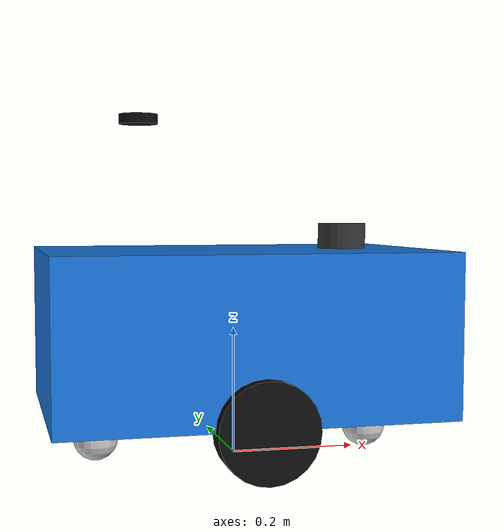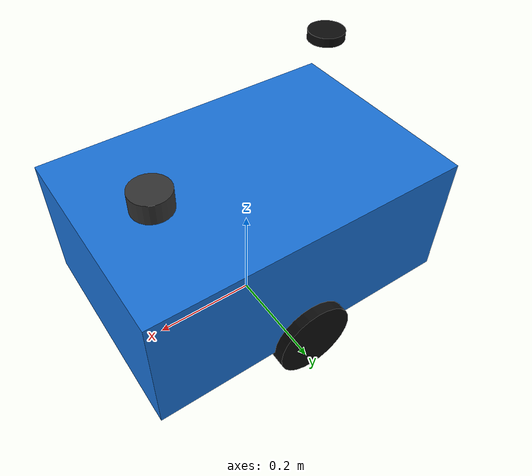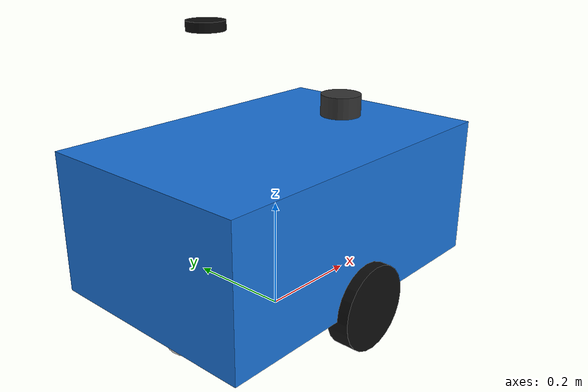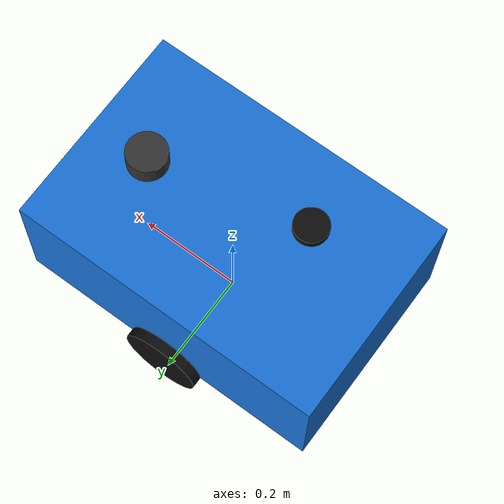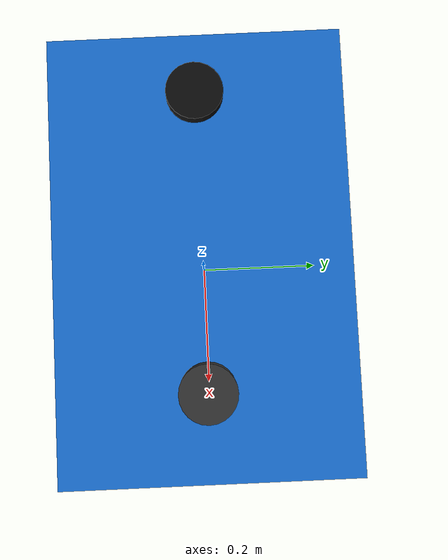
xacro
<?xml version="1.0"?>
<robot name="autonomous_delivery_robot" xmlns:xacro="http://www.ros.org/wiki/xacro">

  <!-- Robot Physical Constants & Properties                                    -->
  <xacro:property name="chassis_length" value="0.60" />
  <xacro:property name="chassis_width" value="0.40" />
  <xacro:property name="chassis_height" value="0.25" />
  <xacro:property name="chassis_mass" value="14.0" />

  <xacro:property name="wheel_radius" value="0.075" />
  <xacro:property name="wheel_width" value="0.040" />
  <xacro:property name="wheel_mass" value="0.8" />
  <xacro:property name="wheel_separation" value="0.40" />

  <xacro:property name="caster_radius" value="0.035" />
  <xacro:property name="caster_mass" value="0.3" />
  <xacro:property name="caster_offset_x" value="0.22" />

  <!-- Materials                                                                -->
  <material name="dark_gray">
    <color rgba="0.2 0.2 0.2 1.0" />
  </material>

  <material name="accent_blue">
    <color rgba="0.1 0.45 0.85 1.0" />
  </material>

  <material name="black">
    <color rgba="0.05 0.05 0.05 1.0" />
  </material>

  <material name="silver">
    <color rgba="0.8 0.8 0.8 1.0" />
  </material>

  <material name="gold">
    <color rgba="0.9 0.7 0.2 1.0" />
  </material>

  <!-- Base Footprint (Ground Projection)                                       -->
  <link name="base_footprint" />

  <joint name="base_footprint_joint" type="fixed">
    <parent link="base_footprint" />
    <child link="base_link" />
    <origin xyz="0.0 0.0 ${wheel_radius}" rpy="0.0 0.0 0.0" />
  </joint>

  <!-- Base Link (Chassis Body)                                                 -->
  <link name="base_link">
    <visual>
      <origin xyz="0.0 0.0 ${chassis_height / 2.0}" rpy="0.0 0.0 0.0" />
      <geometry>
        <box size="${chassis_length} ${chassis_width} ${chassis_height}" />
      </geometry>
      <material name="accent_blue" />
    </visual>
    <collision>
      <origin xyz="0.0 0.0 ${chassis_height / 2.0}" rpy="0.0 0.0 0.0" />
      <geometry>
        <box size="${chassis_length} ${chassis_width} ${chassis_height}" />
      </geometry>
    </collision>
    <inertial>
      <origin xyz="0.0 0.0 ${chassis_height / 2.0}" rpy="0.0 0.0 0.0" />
      <mass value="${chassis_mass}" />
      <inertia ixx="${(chassis_mass / 12.0) * (chassis_width*chassis_width + chassis_height*chassis_height)}"
               ixy="0.0" ixz="0.0"
               iyy="${(chassis_mass / 12.0) * (chassis_length*chassis_length + chassis_height*chassis_height)}"
               iyz="0.0"
               izz="${(chassis_mass / 12.0) * (chassis_length*chassis_length + chassis_width*chassis_width)}" />
    </inertial>
  </link>

  <!-- Drive Wheels (Differential Drive Axis)                                   -->
  <xacro:macro name="drive_wheel" params="prefix y_reflect">
    <link name="${prefix}_wheel_link">
      <visual>
        <origin xyz="0.0 0.0 0.0" rpy="${pi / 2.0} 0.0 0.0" />
        <geometry>
          <cylinder radius="${wheel_radius}" length="${wheel_width}" />
        </geometry>
        <material name="black" />
      </visual>
      <collision>
        <origin xyz="0.0 0.0 0.0" rpy="${pi / 2.0} 0.0 0.0" />
        <geometry>
          <cylinder radius="${wheel_radius}" length="${wheel_width}" />
        </geometry>
      </collision>
      <inertial>
        <origin xyz="0.0 0.0 0.0" rpy="${pi / 2.0} 0.0 0.0" />
        <mass value="${wheel_mass}" />
        <inertia ixx="${(wheel_mass / 12.0) * (3*wheel_radius*wheel_radius + wheel_width*wheel_width)}"
                 ixy="0.0" ixz="0.0"
                 iyy="${(wheel_mass / 12.0) * (3*wheel_radius*wheel_radius + wheel_width*wheel_width)}"
                 iyz="0.0"
                 izz="${0.5 * wheel_mass * wheel_radius * wheel_radius}" />
      </inertial>
    </link>

    <joint name="${prefix}_wheel_joint" type="continuous">
      <parent link="base_link" />
      <child link="${prefix}_wheel_link" />
      <origin xyz="0.0 ${y_reflect * wheel_separation / 2.0} 0.0" rpy="0.0 0.0 0.0" />
      <axis xyz="0.0 1.0 0.0" />
    </joint>
  </xacro:macro>

  <xacro:drive_wheel prefix="left" y_reflect="1" />
  <xacro:drive_wheel prefix="right" y_reflect="-1" />

  <!-- Dual Swivel Caster Wheels (Front and Rear for Slope Stability)           -->
  <xacro:macro name="caster_wheel" params="prefix x_pos">
    <link name="${prefix}_caster_link">
      <visual>
        <origin xyz="0.0 0.0 0.0" rpy="0.0 0.0 0.0" />
        <geometry>
          <sphere radius="${caster_radius}" />
        </geometry>
        <material name="silver" />
      </visual>
      <collision>
        <origin xyz="0.0 0.0 0.0" rpy="0.0 0.0 0.0" />
        <geometry>
          <sphere radius="${caster_radius}" />
        </geometry>
      </collision>
      <inertial>
        <origin xyz="0.0 0.0 0.0" rpy="0.0 0.0 0.0" />
        <mass value="${caster_mass}" />
        <inertia ixx="${(2.0/5.0) * caster_mass * caster_radius * caster_radius}" ixy="0.0" ixz="0.0"
                 iyy="${(2.0/5.0) * caster_mass * caster_radius * caster_radius}" iyz="0.0"
                 izz="${(2.0/5.0) * caster_mass * caster_radius * caster_radius}" />
      </inertial>
    </link>

    <joint name="${prefix}_caster_joint" type="fixed">
      <parent link="base_link" />
      <child link="${prefix}_caster_link" />
      <origin xyz="${x_pos} 0.0 ${-wheel_radius + caster_radius}" rpy="0.0 0.0 0.0" />
    </joint>
  </xacro:macro>

  <xacro:caster_wheel prefix="front" x_pos="${caster_offset_x}" />
  <xacro:caster_wheel prefix="rear" x_pos="${-caster_offset_x}" />

  <!-- RPLIDAR A1M8 Link & Joint                                                -->
  <link name="laser_frame">
    <visual>
      <origin xyz="0.0 0.0 0.0" rpy="0.0 0.0 0.0" />
      <geometry>
        <cylinder radius="0.038" length="0.04" />
      </geometry>
      <material name="dark_gray" />
    </visual>
    <collision>
      <origin xyz="0.0 0.0 0.0" rpy="0.0 0.0 0.0" />
      <geometry>
        <cylinder radius="0.038" length="0.04" />
      </geometry>
    </collision>
  </link>

  <joint name="laser_joint" type="fixed">
    <parent link="base_link" />
    <child link="laser_frame" />
    <origin xyz="0.18 0.0 ${chassis_height + 0.02}" rpy="0.0 0.0 0.0" />
  </joint>

  <!-- MPU6050 IMU Link & Joint                                                 -->
  <link name="imu_link">
    <visual>
      <origin xyz="0.0 0.0 0.0" rpy="0.0 0.0 0.0" />
      <geometry>
        <box size="0.025 0.015 0.005" />
      </geometry>
      <material name="gold" />
    </visual>
  </link>

  <joint name="imu_joint" type="fixed">
    <parent link="base_link" />
    <child link="imu_link" />
    <origin xyz="0.0 0.0 0.05" rpy="0.0 0.0 0.0" />
  </joint>

  <!-- Holybro NEO-M9N GPS Antenna Link & Mast Joint                            -->
  <link name="gps_link">
    <visual>
      <origin xyz="0.0 0.0 0.0" rpy="0.0 0.0 0.0" />
      <geometry>
        <cylinder radius="0.030" length="0.015" />
      </geometry>
      <material name="black" />
    </visual>
  </link>

  <joint name="gps_joint" type="fixed">
    <parent link="base_link" />
    <child link="gps_link" />
    <origin xyz="-0.15 0.0 ${chassis_height + 0.20}" rpy="0.0 0.0 0.0" />
  </joint>

</robot>
